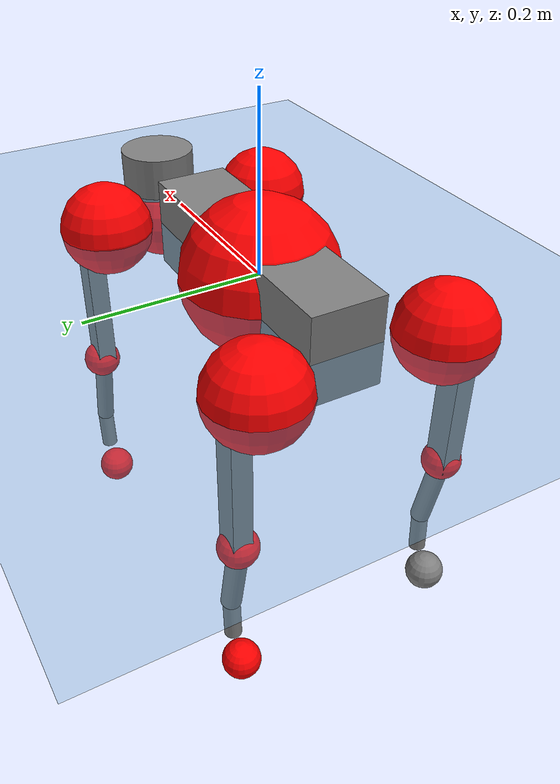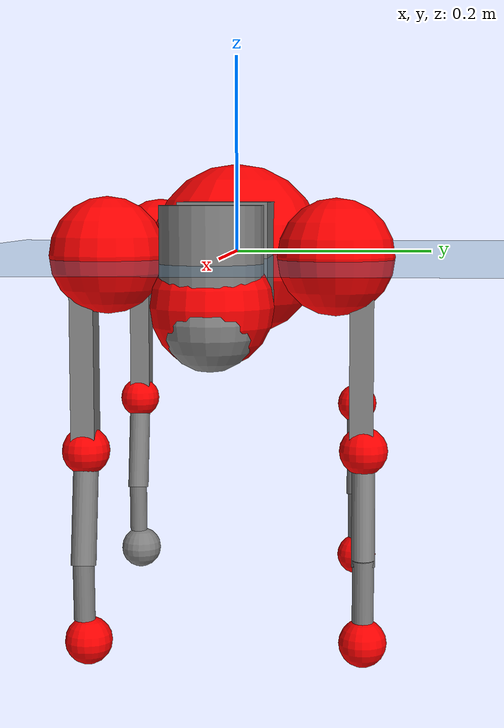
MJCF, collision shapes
<mujoco model="go2">
  <compiler angle="radian" assetdir="assets" balanceinertia="true" inertiafromgeom="false"/>

  <option timestep="0.005" density="1.2" viscosity="2e-05"/>

  <size nkey="1"/>

  <visual>
    <quality shadowsize="8192"/>
    <map shadowclip="0.5"/>
  </visual>

  <default>
    <default class="/">
      <geom contype="0" conaffinity="0" group="1" solref="-1000 -80"/>
      <site size="0.01 0.005 0.005" group="5"/>
      <general forcelimited="true" biastype="affine" gainprm="20" biasprm="0 -20 -0.5"/>
      <default class="go2">
        <joint armature="0.01" damping="0.01" frictionloss="0.2"/>
        <geom condim="1" margin="0.001"/>
        <default class="visual">
          <geom type="mesh" group="2"/>
        </default>
        <default class="collision">
          <geom group="3"/>
          <default class="foot">
            <geom size="0.022 0 0" condim="6" priority="1" friction="0.8 0.02 0.01" solimp="0.015 1 0.022"/>
          </default>
        </default>
        <default class="reward_collision_sphere">
          <geom group="5" rgba="1 0 0 1"/>
        </default>
      </default>
    </default>
  </default>

  <asset>
    <texture type="skybox" colorspace="auto" name="//unnamed_texture_0" builtin="gradient" rgb1="0.95 0.95 0.95" rgb2="0.95 0.95 0.95" width="100" height="600"/>
    <texture type="2d" colorspace="auto" name="texplane" builtin="checker" rgb1="0.345 0.575 0.748" rgb2="0.345 0.575 0.748" markrgb="1 1 1" width="512" height="512"/>
    <material name="MatPlane" class="/" texture="texplane" texuniform="true" texrepeat="2 2" specular="0.9"/>
    <material name="metal" class="/" rgba="0.9 0.95 0.95 1"/>
    <material name="black" class="/" rgba="0 0 0 1"/>
    <material name="white" class="/"/>
    <material name="gray" class="/" rgba="0.671705 0.692426 0.77427 1"/>
    <mesh name="base_0" class="/" file="base_0.obj"/>
    <mesh name="base_1" class="/" file="base_1.obj"/>
    <mesh name="base_2" class="/" file="base_2.obj"/>
    <mesh name="base_3" class="/" file="base_3.obj"/>
    <mesh name="base_4" class="/" file="base_4.obj"/>
    <mesh name="hip_0" class="/" file="hip_0.obj"/>
    <mesh name="hip_1" class="/" file="hip_1.obj"/>
    <mesh name="thigh_0" class="/" file="thigh_0.obj"/>
    <mesh name="thigh_1" class="/" file="thigh_1.obj"/>
    <mesh name="thigh_mirror_0" class="/" file="thigh_mirror_0.obj"/>
    <mesh name="thigh_mirror_1" class="/" file="thigh_mirror_1.obj"/>
    <mesh name="calf_0" class="/" file="calf_0.obj"/>
    <mesh name="calf_1" class="/" file="calf_1.obj"/>
    <mesh name="calf_mirror_0" class="/" file="calf_mirror_0.obj"/>
    <mesh name="calf_mirror_1" class="/" file="calf_mirror_1.obj"/>
    <mesh name="foot" class="/" file="foot.obj"/>
  </asset>

  <worldbody>
    <geom name="floor" class="/" size="100 100 0.125" type="plane" group="0" material="MatPlane"/>
    <light name="toplight_shadow" class="/" pos="0 0 5" dir="0.0990148 0.0990148 -0.990148" type="directional" ambient="0.04 0.04 0.04" diffuse="0.55 0.55 0.55" specular="0.12 0.12 0.12"/>
    <light name="toplight_fill" class="/" pos="0 0 5" dir="0.0990148 0.0990148 -0.990148" type="directional" castshadow="false" ambient="0.04 0.04 0.04" diffuse="0.3 0.3 0.3" specular="0.08 0.08 0.08"/>
    <body name="trunk" childclass="go2" pos="-0.0012908 -0.000177938 0.00010736" quat="1 -0.000173472 0.000332336 -5.96798e-05">
      <inertial pos="0.0197727 -2.99202e-05 -0.00407508" quat="0.00360934 0.708361 -0.00628218 0.705813" mass="4.89402" diaginertia="0.0809019 0.0562375 0.0109187"/>
      <joint name="//unnamed_joint_0" type="free" armature="0" damping="0" frictionloss="0"/>
      <geom name="//unnamed_geom_1" class="visual" material="black" mesh="base_0"/>
      <geom name="//unnamed_geom_2" class="visual" material="black" mesh="base_1"/>
      <geom name="//unnamed_geom_3" class="visual" material="black" mesh="base_2"/>
      <geom name="//unnamed_geom_4" class="visual" material="white" mesh="base_3"/>
      <geom name="//unnamed_geom_5" class="visual" material="gray" mesh="base_4"/>
      <geom name="trunk_1" class="collision" size="0.168287 0.0418256 0.0509959" type="box"/>
      <geom name="trunk_2" class="collision" size="0.0447333 0.04026" pos="0.268393 0 0.00847649" type="cylinder"/>
      <geom name="trunk_3" class="collision" size="0.0420493" pos="0.275926 0 -0.0508589"/>
      <geom name="//unnamed_geom_9" class="reward_collision_sphere" size="0.0894666"/>
      <geom name="//unnamed_geom_10" class="reward_collision_sphere" size="0.0536799" pos="0.263684 0 -0.0381442"/>
      <site name="imu" pos="-0.0229595 -0.0130416 0.0404445" size="0.00894666"/>
      <camera name="track" pos="0 -1.78924 0" quat="0.707107 0.707107 0 0" mode="trackcom"/>
      <camera name="ego_camera" pos="0.293819 0 0.0381442" quat="-0.5 -0.5 0.5 0.5"/>
      <body name="FL_hip" pos="0.181516 0.0424437 0.00140981" quat="0.999999 0.000250593 -0.00140088 -1.37466e-05">
        <inertial pos="-0.00496563 0.0024362 0.000887635" quat="0.493639 0.501078 0.510241 0.494869" mass="0.500829" diaginertia="0.000675932 0.00035154 0.000216403"/>
        <joint name="FL_hip_joint" pos="0 0 0" axis="0.999964 0.00474749 0.00704296" range="-0.999959 1.05082" armature="0.00967562" damping="0.00224016" frictionloss="0.181531"/>
        <geom name="//unnamed_geom_11" class="visual" material="metal" mesh="hip_0"/>
        <geom name="//unnamed_geom_12" class="visual" material="gray" mesh="hip_1"/>
        <geom name="//unnamed_geom_13" class="collision" size="0.0411546 0.0178933" pos="0 0.0715696 0" quat="0.707107 0.707107 0 0" type="cylinder"/>
        <geom name="//unnamed_geom_14" class="reward_collision_sphere" size="0.0536799" pos="0 0.0626234 0"/>
        <body name="FL_thigh" pos="-0.000917122 0.0861333 0.00163214" quat="1 -0.000156141 0.000118694 4.82149e-05">
          <inertial pos="-0.00363974 -0.0222073 -0.0302568" quat="0.829751 0.0796126 -0.0190856 0.552096" mass="0.835911" diaginertia="0.00440885 0.00336247 0.00038386"/>
          <joint name="FL_thigh_joint" pos="0 0 0" axis="0.00171467 0.999998 0.000482799" range="-1.56566 3.54253" armature="0.00896309" damping="0" frictionloss="0.179725"/>
          <geom name="//unnamed_geom_15" class="visual" material="metal" mesh="thigh_0"/>
          <geom name="//unnamed_geom_16" class="visual" material="gray" mesh="thigh_1"/>
          <geom name="//unnamed_geom_17" class="collision" size="0.0952819 0.0109597 0.0152093" pos="0 0 -0.0902746" quat="0.707107 0 0.707107 0" type="box"/>
          <body name="FL_calf" pos="0.00226454 0.00231866 -0.17946" quat="1 0.000127116 -6.59816e-05 0.000136062">
            <inertial pos="0.00711667 -0.00043312 -0.11837" quat="0.710133 0.000935974 -0.00429201 0.704053" mass="0.177978" diaginertia="0.00111882 0.000847843 2.33068e-05"/>
            <joint name="FL_calf_joint" pos="0 0 0" axis="0.00255636 0.999995 0.00202164" range="-2.70623 -0.880641" armature="0.00885405" damping="0" frictionloss="0.178518"/>
            <geom name="//unnamed_geom_18" class="visual" material="gray" mesh="calf_0"/>
            <geom name="//unnamed_geom_19" class="visual" material="black" mesh="calf_1"/>
            <geom name="FL_calf0" class="collision" size="0.010736 0.0536799" pos="0.00753383 0 -0.0508589" quat="0.994493 0 -0.104807 0" type="cylinder"/>
            <geom name="//unnamed_geom_21" class="collision" size="0.00984132 0.0290766" pos="0.0188346 0 -0.125452" quat="0.999688 0 0.0249974 0" type="cylinder"/>
            <geom name="//unnamed_geom_22" class="visual" pos="0 0 -0.180549" quat="1 0 0 0" material="black" mesh="foot"/>
            <geom name="FL_foot" class="foot" size="0.0168624" pos="-0.00188346 0 -0.180549"/>
            <geom name="//unnamed_geom_24" class="reward_collision_sphere" size="0.0223666"/>
            <geom name="//unnamed_geom_25" class="reward_collision_sphere" size="0.0223666" pos="-0.00188346 0 -0.180549"/>
            <site name="FL_foot" class="foot" pos="-0.00188346 0 -0.180549" size="0.00894666"/>
          </body>
        </body>
      </body>
      <body name="FR_hip" pos="0.182854 -0.0408748 0.00284968" quat="1 -2.6946e-05 -0.000267106 0.000107878">
        <inertial pos="-0.00386434 -0.0026633 0.00022471" quat="0.508234 0.500639 0.499103 0.49189" mass="0.500032" diaginertia="0.000675359 0.000349363 0.000215031"/>
        <joint name="FR_hip_joint" pos="0 0 0" axis="0.999996 0.00107646 0.00277148" stiffness="0.000594699" range="-1.01922 1.05985" armature="0.00902302" damping="0.0120821" frictionloss="0.170177"/>
        <geom name="//unnamed_geom_26" class="visual" pos="0 4.09192e-10 1.75511e-08" quat="4.63268e-05 1 0 0" material="metal" mesh="hip_0"/>
        <geom name="//unnamed_geom_27" class="visual" pos="0 6.63349e-10 -4.34105e-08" quat="4.63268e-05 1 0 0" material="gray" mesh="hip_1"/>
        <geom name="//unnamed_geom_28" class="collision" size="0.0411546 0.0178933" pos="0 -0.0715696 0" quat="0.707107 0.707107 0 0" type="cylinder"/>
        <geom name="//unnamed_geom_29" class="reward_collision_sphere" size="0.0536799" pos="0 -0.0626234 0"/>
        <body name="FR_thigh" pos="0.00038302 -0.0853451 -0.00106745" quat="1 0.000456633 0.000230034 -0.000186383">
          <inertial pos="-0.00320809 0.0200124 -0.0301617" quat="0.554681 -0.010239 0.0922711 0.826868" mass="0.839684" diaginertia="0.00454307 0.00344961 0.000396414"/>
          <joint name="FR_thigh_joint" pos="0 0 0" axis="0.0037469 -0.999992 -0.00153561" stiffness="0.000345516" range="-3.54088 1.60511" armature="0.00819415" damping="0.0133387" frictionloss="0.170932"/>
          <geom name="//unnamed_geom_30" class="visual" material="metal" mesh="thigh_mirror_0"/>
          <geom name="//unnamed_geom_31" class="visual" material="gray" mesh="thigh_mirror_1"/>
          <geom name="//unnamed_geom_32" class="collision" size="0.0952819 0.0109597 0.0152093" pos="0 0 -0.0902746" quat="0.707107 0 0.707107 0" type="box"/>
          <body name="FR_calf" pos="-0.000389313 0.000462623 -0.180347" quat="1 7.26565e-05 4.84785e-05 5.61216e-05">
            <inertial pos="0.00514252 0.000551799 -0.117447" quat="0.70364 -0.00433248 0.00216634 0.71054" mass="0.16372" diaginertia="0.00105877 0.000837889 2.18321e-05"/>
            <joint name="FR_calf_joint" pos="0 0 0" axis="-0.00505445 -0.999977 -0.0045138" stiffness="0.00220168" range="0.833651 2.72395" armature="0.00961715" damping="0.0131379" frictionloss="0.179464"/>
            <geom name="//unnamed_geom_33" class="visual" material="gray" mesh="calf_mirror_0"/>
            <geom name="//unnamed_geom_34" class="visual" material="black" mesh="calf_mirror_1"/>
            <geom name="FR_calf0" class="collision" size="0.0116307 0.0536799" pos="0.00941729 0 -0.0508589" quat="0.995004 0 -0.0998334 0" type="cylinder"/>
            <geom name="//unnamed_geom_36" class="collision" size="0.00984132 0.0290766" pos="0.0188346 0 -0.125452" quat="0.999688 0 0.0249974 0" type="cylinder"/>
            <geom name="//unnamed_geom_37" class="visual" pos="0 0 -0.180549" quat="1 0 0 0" material="black" mesh="foot"/>
            <geom name="FR_foot" class="foot" size="0.0216573" pos="-0.00188346 0 -0.180549"/>
            <geom name="//unnamed_geom_39" class="reward_collision_sphere" size="0.0223666"/>
            <geom name="//unnamed_geom_40" class="reward_collision_sphere" size="0.0223666" pos="-0.00188346 0 -0.180549"/>
            <site name="FR_foot" class="foot" pos="-0.00188346 0 -0.180549" size="0.00894666"/>
          </body>
        </body>
      </body>
      <body name="RL_hip" pos="-0.181175 0.0415461 -0.00184644" quat="1 3.0954e-05 7.43851e-05 -0.000204349">
        <inertial pos="0.00480172 0.00198683 -0.00226488" quat="0.50528 0.498106 0.497124 0.49945" mass="0.499513" diaginertia="0.000671864 0.000336872 0.000211104"/>
        <joint name="RL_hip_joint" pos="0 0 0" axis="-0.999775 -0.00289631 0.0210007" range="-0.995504 1.09314" armature="0.00900286" damping="0" frictionloss="0.199981"/>
        <geom name="//unnamed_geom_41" class="visual" pos="-8.19585e-10 0 -1.60658e-07" quat="4.63268e-05 0 1 0" material="metal" mesh="hip_0"/>
        <geom name="//unnamed_geom_42" class="visual" pos="-1.32865e-09 0 -1.4248e-07" quat="4.63268e-05 0 1 0" material="gray" mesh="hip_1"/>
        <geom name="//unnamed_geom_43" class="collision" size="0.0411546 0.0178933" pos="0 0.0715696 0" quat="0.707107 0.707107 0 0" type="cylinder"/>
        <geom name="//unnamed_geom_44" class="reward_collision_sphere" size="0.0536799" pos="0 0.0626234 0"/>
        <body name="RL_thigh" pos="0.000676567 0.0860567 -0.00112475" quat="1 1.33242e-05 1.58248e-05 -2.62677e-06">
          <inertial pos="-0.00572847 -0.0195939 -0.0303996" quat="0.828668 0.0889018 -0.0092897 0.552558" mass="0.824165" diaginertia="0.00423394 0.00332978 0.000369963"/>
          <joint name="RL_thigh_joint" pos="0 0 0" axis="0.0130662 0.999908 0.00359829" stiffness="0.00403311" range="-0.569897 4.55686" armature="0.00858074" damping="0.00489244" frictionloss="0.1808"/>
          <geom name="//unnamed_geom_45" class="visual" material="metal" mesh="thigh_0"/>
          <geom name="//unnamed_geom_46" class="visual" material="gray" mesh="thigh_1"/>
          <geom name="//unnamed_geom_47" class="collision" size="0.0952819 0.0109597 0.0152093" pos="0 0 -0.0902746" quat="0.707107 0 0.707107 0" type="box"/>
          <body name="RL_calf" pos="-0.000361389 -0.00179743 -0.182537" quat="1 6.15467e-05 -6.08283e-06 7.03913e-05">
            <inertial pos="0.00610735 -0.00100004 -0.1189" quat="0.71637 0.00445369 -0.00137009 0.697705" mass="0.169223" diaginertia="0.0010997 0.000829176 2.34844e-05"/>
            <joint name="RL_calf_joint" pos="0 0 0" axis="-0.00469509 0.999951 0.00868164" range="-2.74348 -0.835013" armature="0.0090664" damping="0.000314002" frictionloss="0.182913"/>
            <geom name="//unnamed_geom_48" class="visual" material="gray" mesh="calf_0"/>
            <geom name="//unnamed_geom_49" class="visual" material="black" mesh="calf_1"/>
            <geom name="RL_calf0" class="collision" size="0.0116307 0.0536799" pos="0.00941729 0 -0.0508589" quat="0.995004 0 -0.0998334 0" type="cylinder"/>
            <geom name="//unnamed_geom_51" class="collision" size="0.00984132 0.0290766" pos="0.0188346 0 -0.125452" quat="0.999688 0 0.0249974 0" type="cylinder"/>
            <geom name="//unnamed_geom_52" class="visual" pos="0 0 -0.180549" quat="1 0 0 0" material="black" mesh="foot"/>
            <geom name="RL_foot" class="foot" size="0.0179631" pos="-0.00188346 0 -0.180549"/>
            <geom name="//unnamed_geom_54" class="reward_collision_sphere" size="0.0223666"/>
            <geom name="//unnamed_geom_55" class="reward_collision_sphere" size="0.0223666" pos="-0.00188346 0 -0.180549"/>
            <site name="RL_foot" class="foot" pos="-0.00188346 0 -0.180549" size="0.00894666"/>
          </body>
        </body>
      </body>
      <body name="RR_hip" pos="-0.18215 -0.0418519 -0.000467436" quat="1 4.85642e-05 3.92184e-05 -0.000233192">
        <inertial pos="0.00514193 0.000600844 -0.00146938" quat="0.499205 0.496974 0.49809 0.505686" mass="0.466662" diaginertia="0.000637266 0.00033328 0.000202852"/>
        <joint name="RR_hip_joint" pos="0 0 0" axis="-1 0.000124083 -2.93548e-05" range="-1.0614 1.01033" armature="0.00888758" damping="0" frictionloss="0.170602"/>
        <geom name="//unnamed_geom_56" class="visual" pos="8.17954e-10 4.09192e-10 -1.78209e-07" quat="2.14617e-09 4.63268e-05 4.63268e-05 -1" material="metal" mesh="hip_0"/>
        <geom name="//unnamed_geom_57" class="visual" pos="1.33268e-09 6.63349e-10 -9.90698e-08" quat="2.14617e-09 4.63268e-05 4.63268e-05 -1" material="gray" mesh="hip_1"/>
        <geom name="//unnamed_geom_58" class="collision" size="0.0411546 0.0178933" pos="0 -0.0715696 0" quat="0.707107 0.707107 0 0" type="cylinder"/>
        <geom name="//unnamed_geom_59" class="reward_collision_sphere" size="0.0536799" pos="0 -0.0626234 0"/>
        <body name="RR_thigh" pos="-0.000705944 -0.0867055 0.00156125" quat="1 -0.000457553 -2.18921e-05 -4.41538e-05">
          <inertial pos="-0.00404529 0.021468 -0.027799" quat="0.551933 -0.0200299 0.0840422 0.829401" mass="0.785445" diaginertia="0.00427631 0.00325144 0.000384003"/>
          <joint name="RR_thigh_joint" pos="0 0 0" axis="-0.00541299 -0.999966 -0.00614683" stiffness="0.00416512" range="-4.58737 0.570687" armature="0.00912121" damping="0.0110758" frictionloss="0.16109"/>
          <geom name="//unnamed_geom_60" class="visual" material="metal" mesh="thigh_mirror_0"/>
          <geom name="//unnamed_geom_61" class="visual" material="gray" mesh="thigh_mirror_1"/>
          <geom name="//unnamed_geom_62" class="collision" size="0.0952819 0.0109597 0.0152093" pos="0 0 -0.0902746" quat="0.707107 0 0.707107 0" type="box"/>
          <body name="RR_calf" pos="0.00313303 -0.00138355 -0.181384" quat="1 -0.000178958 -0.000233322 6.20813e-05">
            <inertial pos="0.00475557 0.000553272 -0.12027" quat="0.703057 -0.00376339 0.000483904 0.711124" mass="0.167392" diaginertia="0.00110114 0.00082363 2.31236e-05"/>
            <joint name="RR_calf_joint" pos="0 0 0" axis="0.00168283 -0.999995 -0.00262882" range="0.83343 2.73299" armature="0.00910638" damping="0.0030884" frictionloss="0.179273"/>
            <geom name="//unnamed_geom_63" class="visual" material="gray" mesh="calf_mirror_0"/>
            <geom name="//unnamed_geom_64" class="visual" material="black" mesh="calf_mirror_1"/>
            <geom name="RR_calf0" class="collision" size="0.0116307 0.0536799" pos="0.00941729 0 -0.0508589" quat="0.995004 0 -0.0998334 0" type="cylinder"/>
            <geom name="//unnamed_geom_66" class="collision" size="0.00984132 0.0290766" pos="0.0188346 0 -0.125452" quat="0.999688 0 0.0249974 0" type="cylinder"/>
            <geom name="//unnamed_geom_67" class="visual" pos="0 0 -0.180549" quat="1 0 0 0" material="black" mesh="foot"/>
            <geom name="RR_foot" class="foot" size="0.0229268" pos="-0.00188346 0 -0.180549"/>
            <geom name="//unnamed_geom_69" class="reward_collision_sphere" size="0.0223666"/>
            <geom name="//unnamed_geom_70" class="reward_collision_sphere" size="0.0223666" pos="-0.00188346 0 -0.180549"/>
            <site name="RR_foot" class="foot" pos="-0.00188346 0 -0.180549" size="0.00894666"/>
          </body>
        </body>
      </body>
    </body>
  </worldbody>

  <contact>
    <pair class="/" geom1="floor" geom2="FL_foot" name="//unnamed_contact_0"/>
    <pair class="/" geom1="floor" geom2="FR_foot" name="//unnamed_contact_1"/>
    <pair class="/" geom1="floor" geom2="RL_foot" name="//unnamed_contact_2"/>
    <pair class="/" geom1="floor" geom2="RR_foot" name="//unnamed_contact_3"/>
  </contact>

  <actuator>
    <general name="FL_hip" class="/" joint="FL_hip_joint" forcerange="-20.9348 20.9348" gainprm="18.4138" biasprm="0 -18.4138 -0.472156"/>
    <general name="FL_thigh" class="/" joint="FL_thigh_joint" forcerange="-22.937 22.937" gainprm="18.4138" biasprm="0 -18.4138 -0.472156"/>
    <general name="FL_calf" class="/" joint="FL_calf_joint" forcerange="-36.9308 36.9308" gainprm="18.4138" biasprm="0 -18.4138 -0.472156"/>
    <general name="FR_hip" class="/" joint="FR_hip_joint" forcerange="-21.4393 21.4393" gainprm="18.4138" biasprm="0 -18.4138 -0.472156"/>
    <general name="FR_thigh" class="/" joint="FR_thigh_joint" forcerange="-21.5184 21.5184" gainprm="18.4138" biasprm="0 -18.4138 -0.472156"/>
    <general name="FR_calf" class="/" joint="FR_calf_joint" forcerange="-44.0247 44.0247" gainprm="18.4138" biasprm="0 -18.4138 -0.472156"/>
    <general name="RL_hip" class="/" joint="RL_hip_joint" forcerange="-23.1022 23.1022" gainprm="18.4138" biasprm="0 -18.4138 -0.472156"/>
    <general name="RL_thigh" class="/" joint="RL_thigh_joint" forcerange="-21.1169 21.1169" gainprm="18.4138" biasprm="0 -18.4138 -0.472156"/>
    <general name="RL_calf" class="/" joint="RL_calf_joint" forcerange="-41.4655 41.4655" gainprm="18.4138" biasprm="0 -18.4138 -0.472156"/>
    <general name="RR_hip" class="/" joint="RR_hip_joint" forcerange="-20.8375 20.8375" gainprm="18.4138" biasprm="0 -18.4138 -0.472156"/>
    <general name="RR_thigh" class="/" joint="RR_thigh_joint" forcerange="-19.1496 19.1496" gainprm="18.4138" biasprm="0 -18.4138 -0.472156"/>
    <general name="RR_calf" class="/" joint="RR_calf_joint" forcerange="-37.8766 37.8766" gainprm="18.4138" biasprm="0 -18.4138 -0.472156"/>
  </actuator>

  <sensor>
    <gyro site="imu" name="imu_angular_velocity"/>
    <velocimeter site="imu" name="imu_linear_velocity"/>
    <framelinvel objtype="site" objname="FL_foot" name="FL_foot_global_linear_velocity"/>
    <framelinvel objtype="site" objname="FR_foot" name="FR_foot_global_linear_velocity"/>
    <framelinvel objtype="site" objname="RL_foot" name="RL_foot_global_linear_velocity"/>
    <framelinvel objtype="site" objname="RR_foot" name="RR_foot_global_linear_velocity"/>
  </sensor>

  <keyframe>
    <key name="home" qpos="0 0 0.325 1 0 0 0 0.1 0.8 -1.5 -0.1 -0.8 1.5 -0.1 0.8 -1.5 0.1 -0.8 1.5"/>
  </keyframe>
</mujoco>
